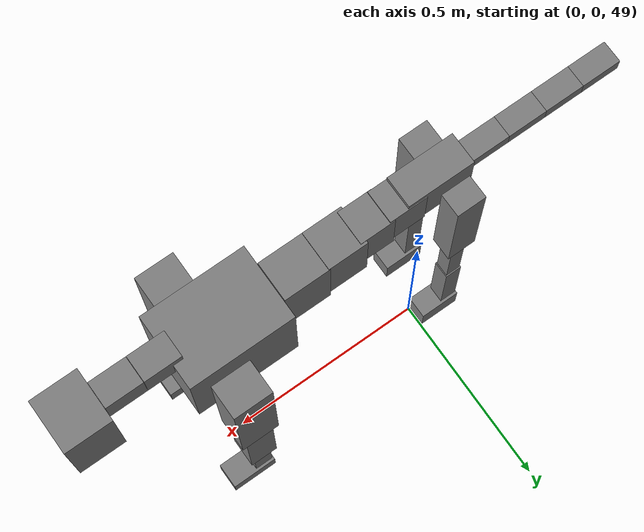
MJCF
<mujoco model="dog">

    <default>
        <joint armature="0.02" stiffness="1" damping="0.2" limited="true"/>
        <geom condim="3" friction="1 0.05 0.05" margin="0.01"/>
        <motor ctrllimited="true" ctrlrange="-1.0 1.0" forcelimited="true" gear="50"/>
    </default>

    <compiler inertiafromgeom="true" angle="radian"/>

    <option timestep="0.016" iterations="50" tolerance="1e-10" solver="Newton" jacobian="dense" cone="pyramidal"/>

    <size nconmax="20000" njmax="60000" nstack="5000000"/>
    <visual>
        <map force="0.1" zfar="30"/>
        <rgba haze="0.15 0.25 0.35 1"/>
        <quality shadowsize="2048"/>
        <global offwidth="800" offheight="800"/>
    </visual>

    <asset>
        <texture type="skybox" builtin="gradient" rgb1="0.3 0.5 0.7" rgb2="0 0 0" width="512" height="512"/>
        <texture name="texplane" type="2d" builtin="checker" rgb1=".2 .3 .4" rgb2=".1 0.15 0.2" width="512" height="512"
                 mark="cross" markrgb=".8 .8 .8"/>
        <texture name="texgeom" type="cube" builtin="flat" mark="cross" width="127" height="1278" rgb1="0.8 0.6 0.4"
                 rgb2="0.8 0.6 0.4" markrgb="1 1 1" random="0.01"/>

        <material name="matplane" reflectance="0.3" texture="texplane" texrepeat="1 1" texuniform="true"/>
        <material name="matgeom" texture="texgeom" texuniform="true" rgba="0.8 0.6 .4 1"/>
    </asset>

    <worldbody>
        <geom name="floor" pos="0 0 0" size="0 0 .25" type="plane" material="matplane" condim="3"/>

        <light directional="false" diffuse=".2 .2 .2" specular="0 0 0" pos="0 0 5" dir="0 0 -1" castshadow="false"/>
        <light mode="targetbodycom" target="torso" directional="false" diffuse=".8 .8 .8" specular="0.3 0.3 0.3"
               pos="0 0 4.0" dir="0 0 -1"/>

        <body name="root" pos="0 0 50">
            <freejoint name="root_1"/>
            <geom type="box" pos="0 0 -0.02" size="0.0774  0.0358  0.063" density="2030"/>

            <body name="spine1" pos="0.054 0 0">
                <joint name="spine1_y" axis="0 1 0" range="0 0.7" limited="true"/>
                <geom type="box" pos="0.02375 0 -0.03" size="0.04375  0.0375  0.05985" density="2030"/>

                <body name="spine2" pos="0.0612 0 0">
                    <joint name="spine2_y" axis="0 1 0" range="-0.15 0.15" limited="true"/>
                    <geom type="box" pos="0.03555  0  -0.04" size="0.04055  0.039  0.06615" density="2030"/>

                    <body name="spine3" pos="0.0730 0 0">
                        <joint name="spine3_y" axis="0 1 0" range="-0.15 0.15" limited="true"/>
                        <geom type="box" pos="0.03555  0  -0.057" size="0.04555  0.0445  0.081" density="2030"/>

                        <body name="spine4" pos="0.0780 0 0">
                            <joint name="spine4_y" axis="0 1 0" range="-0.15 0.15" limited="true"/>
                            <geom type="box" pos="0.05265  0  -0.07" size="0.05265  0.045  0.09135" density="2030"/>

                            <body name="torso" pos="0.1082 0 0">
                                <joint name="torso_y" axis="0 1 0" range="-0.15 0.15" limited="true"/>
                                <geom type="box" pos="0.11925  0  -0.085" size="0.11925  0.085  0.11745"
                                      density="2030"/>

                                <body name="neck1" pos="0.2160  0   0.0180">
                                    <joint name="neck1_y" axis="0 1 0" range="-1.2  -1" limited="true"/>
                                    <geom type="box" pos="0.0423  0  0" size="0.0423  0.03  0.036" density="2325"/>

                                    <body name="neck2" pos="0.0853  0  0">
                                        <joint name="neck2_y" axis="0 1 0" range="0.1  0" limited="true"/>
                                        <geom type="box" pos="0.0423  0  0" size="0.0423  0.03  0.036" density="2325"/>

                                        <body name="head" pos="0.0853  0  0">
                                            <joint name="head_y" axis="0 1 0" range="-0.3  -0.2" limited="true"/>
                                            <geom type="box" pos="0.0531  0  -0.055" size="0.0531  0.06  0.1044"
                                                  density="4030"/>

                                        </body>
                                    </body>
                                </body>

                                <body name="front_shoulder" pos="0.156  0   -0.0480">
                                    <joint name="front_shoulder_y" axis="0 1 0" range="-1 1.5" limited="true"/>
                                    <geom type="box" pos="0 0.13 -0.1380" size="0.0448  0.0383  0.1647" density="1158"/>
                                    <geom type="box" pos="0 -0.13 -0.1380" size="0.0448  0.0383  0.1647"
                                          density="1158"/>

                                    <body name="front_elbow" pos="0  0  -0.2761">
                                        <joint name="front_elbow_y" axis="0 1 0" range="-2 0" limited="true"/>
                                        <geom type="box" pos="0 0.13 -0.1378" size="0.0329  0.0336  0.1378"
                                              density="1081"/>
                                        <geom type="box" pos="0 -0.13 -0.1378" size="0.0329  0.0336  0.1378"
                                              density="1081"/>

                                        <body name="front_wrist" pos="0  0  -0.2756">
                                            <joint name="front_wrist_y" axis="0 1 0" range="-0.2 0" limited="true"/>
                                            <geom type="box" pos="0 0.13 -0.0729" size="0.0216  0.0240  0.0860"
                                                  density="1664"/>
                                            <geom type="box" pos="0 -0.13 -0.0729" size="0.0216  0.0240  0.0860"
                                                  density="1664"/>

                                            <body name="front_finger_end" pos="0  0  -0.1458">
                                                <joint name="front_finger_y" axis="0 1 0" range="-0.4 1"
                                                       limited="true"/>
                                                <geom type="box" pos="0.0301  0.13  -0.0097"
                                                      size="0.0551  0.0301  0.0247" density="1515"/>
                                                <geom type="box" pos="0.0301  -0.13  -0.0097"
                                                      size="0.0551  0.0301  0.0247" density="1515"/>

                                            </body>

                                        </body>
                                    </body>
                                </body>

                            </body>
                        </body>
                    </body>
                </body>
            </body>

            <body name="back_hip" pos="-0.03 0 -0.018">
                <joint name="back_hip_y" axis="0 1 0" range="-1.5 0.3" limited="true"/>
                <geom type="box" pos="0 0.07 -0.1219" size="0.0338  0.0265  0.1447" density="1154"/>
                <geom type="box" pos="0 -0.07 -0.1219" size="0.0338  0.0265  0.1447" density="1154"/>

                <body name="back_knee" pos="0  0  -0.2438">
                    <joint name="back_knee_y" axis="0 1 0" range="0 2.8" limited="true"/>
                    <geom type="box" pos="0 0.07 -0.1092" size="0.0174  0.0171  0.1247" density="1227"/>
                    <geom type="box" pos="0 -0.07 -0.1092" size="0.0174  0.0171  0.1247" density="1227"/>

                    <body name="back_ankle" pos="0  0  -0.2183">
                        <joint name="back_ankle_y" axis="0 1 0" range="-2.2 0" limited="true"/>
                        <geom type="box" pos="0 0.07 -0.1029" size="0.0198  0.0198  0.1141" density="1284"/>
                        <geom type="box" pos="0 -0.07 -0.1029" size="0.0198  0.0198  0.1141" density="1284"/>

                        <body name="back_toe_end" pos="0  0  -0.2058">
                            <joint name="back_toe_y" axis="0 1 0" range="-0.4 1" limited="true"/>
                            <geom type="box" pos="0.0262  0.07  -0.0188" size="0.0481  0.0262  0.0338" density="1515"/>
                            <geom type="box" pos="0.0262  -0.07  -0.0188" size="0.0481  0.0262  0.0338" density="1515"/>

                        </body>
                    </body>
                </body>
            </body>

            <body name="tail1" pos="-0.074 0 -0.006">
                <joint name="tail1_y" axis="0 1 0" range="-0.2 0.2" limited="true"/>
                <geom type="box" pos="-0.0536  0  0" size="0.045  0.025  0.0175" density="1587"/>

                <body name="tail2" pos="-0.09 0 0">
                    <joint name="tail2_y" axis="0 1 0" range="-0.2 0.2" limited="true"/>
                    <geom type="box" pos="-0.0536  0  0" size="0.045  0.025  0.0175" density="1587"/>

                    <body name="tail3" pos="-0.09 0 0">
                        <joint name="tail3_y" axis="0 1 0" range="-0.2 0.2" limited="true"/>
                        <geom type="box" pos="-0.0536  0  0" size="0.045  0.025  0.0175" density="1587"/>

                        <body name="tail4" pos="-0.09 0 0">
                            <joint name="tail4_y" axis="0 1 0" range="-0.2 0.2" limited="true"/>
                            <geom type="box" pos="-0.0536  0  0" size="0.045  0.025  0.0175" density="1587"/>

                        </body>
                    </body>
                </body>
            </body>
        </body>
    </worldbody>

    <actuator>
        <motor joint="spine1_y" forcerange="-150 150     "/>
        <motor joint="spine2_y" forcerange="-150 150     "/>
        <motor joint="spine3_y" forcerange="-150 150     "/>
        <motor joint="spine4_y" forcerange="-150 150     "/>
        <motor joint="torso_y" forcerange="-150 150     "/>
        <motor joint="neck1_y" forcerange="-100 100       "/>
        <motor joint="neck2_y" forcerange="-100 100       "/>
        <motor joint="head_y" forcerange="-150 150       "/>
        <motor joint="front_shoulder_y" forcerange="-173.28 182.18"/>
        <motor joint="front_elbow_y" forcerange="-188.80 155.66"/>
        <motor joint="front_wrist_y" forcerange="-97.06 94.77"/>
        <motor joint="front_finger_y" forcerange="-46.05 74.37"/>
        <motor joint="back_hip_y" forcerange="-270.08 283.46"/>
        <motor joint="back_knee_y" forcerange="-207.47 241.52"/>
        <motor joint="back_angle_y" forcerange="-85.02 132.43"/>
        <motor joint="back_toe_y" forcerange="-81.76 48.05"/>
        <motor joint="tail1_y" forcerange="-50 50     "/>
        <motor joint="tail2_y" forcerange="-50 50     "/>
        <motor joint="tail3_y" forcerange="-50 50     "/>
        <motor joint="tail4_y" forcerange="-50 50     "/>
    </actuator>
</mujoco>
